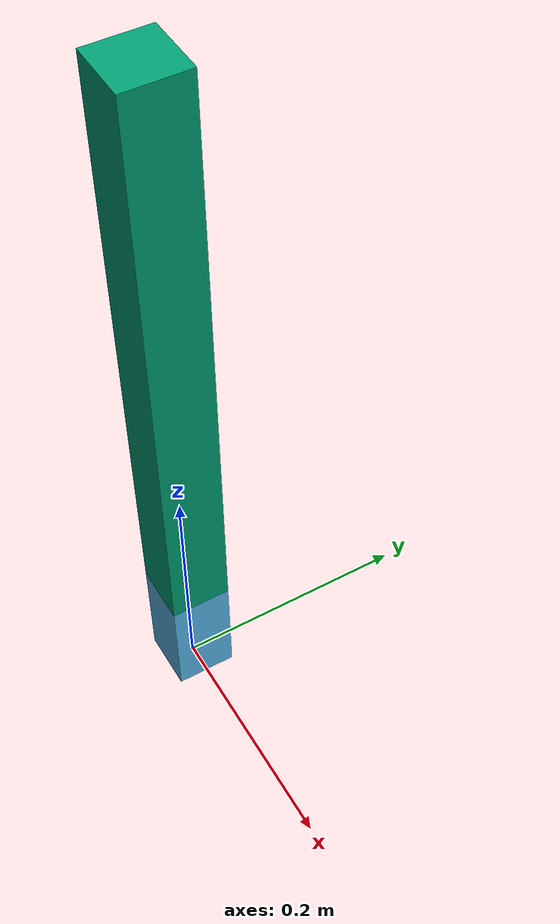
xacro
<?xml version="1.0"?>
<robot xmlns:xacro="http://wiki.ros.org/xacro" name="minimal_revolute_ur5plugin">

  <xacro:property name="base_h" value="0.10"/>
  <xacro:property name="link_l" value="0.50"/>
  <xacro:property name="link_w" value="0.05"/>

  <link name="world"/>

  <joint name="world_to_base" type="fixed">
    <parent link="world"/>
    <child link="base_link"/>
    <origin xyz="0 0 ${base_h/2}" rpy="0 0 0"/>
  </joint>

  <link name="base_link">
    <inertial>
      <mass value="2.0"/>
      <origin xyz="0 0 0" rpy="0 0 0"/>
      <inertia ixx="0.05" ixy="0" ixz="0" iyy="0.05" iyz="0" izz="0.05"/>
    </inertial>
    <visual>
      <origin xyz="0 0 0" rpy="0 0 0"/>
      <geometry><box size="${link_w} ${link_w} ${base_h}"/></geometry>
    </visual>
    <collision>
      <origin xyz="0 0 0" rpy="0 0 0"/>
      <geometry><box size="${link_w} ${link_w} ${base_h}"/></geometry>
    </collision>
  </link>

  <joint name="joint1" type="revolute">
    <parent link="base_link"/>
    <child link="link1"/>
    <origin xyz="0 0 ${base_h/2}" rpy="0 0 0"/>
    <axis xyz="0 1 0"/>
    <limit lower="-3.14" upper="3.14" effort="50" velocity="3.0"/>
    <dynamics damping="0.1" friction="0.0"/>
  </joint>

  <link name="link1">
    <inertial>
      <origin xyz="0 0 ${link_l/2}" rpy="0 0 0"/>
      <mass value="0.5"/>
      <inertia
        ixx="${0.5/12.0*(link_w*link_w + link_l*link_l)}" ixy="0" ixz="0"
        iyy="${0.5/12.0*(link_w*link_w + link_l*link_l)}" iyz="0"
        izz="${0.5/12.0*(link_w*link_w + link_w*link_w)}"/>
    </inertial>
    <visual>
      <origin xyz="0 0 ${link_l/2}" rpy="0 0 0"/>
      <geometry><box size="${link_w} ${link_w} ${link_l}"/></geometry>
    </visual>
    <collision>
      <origin xyz="0 0 ${link_l/2}" rpy="0 0 0"/>
      <geometry><box size="${link_w} ${link_w} ${link_l}"/></geometry>
    </collision>
  </link>

  <ros2_control name="MinimalRevoluteSystem" type="system">
    <hardware>
      <plugin>gz_ros2_control/GazeboSimSystem</plugin>
    </hardware>
    <joint name="joint1">
      <command_interface name="position"/>
      <state_interface name="position">
        <param name="initial_value">0.0</param>
      </state_interface>
      <state_interface name="velocity"/>
    </joint>
  </ros2_control>

  <gazebo>
    <plugin filename="gz_ros2_control-system" name="gz_ros2_control::GazeboSimROS2ControlPlugin">
      <robot_param>robot_description</robot_param>
      <robot_param_node>robot_state_publisher</robot_param_node>
      <use_sim_time>true</use_sim_time>
      <hold_joints>false</hold_joints>
      <position_proportional_gain>1000.0</position_proportional_gain>
      <ros>
        <param name="use_sim_time">true</param>
        <param name="hold_joints">false</param>
      </ros>
      <parameters>$(find gz_ros2_control_minimal_probe)/config/controllers.yaml</parameters>
    </plugin>
  </gazebo>

</robot>
